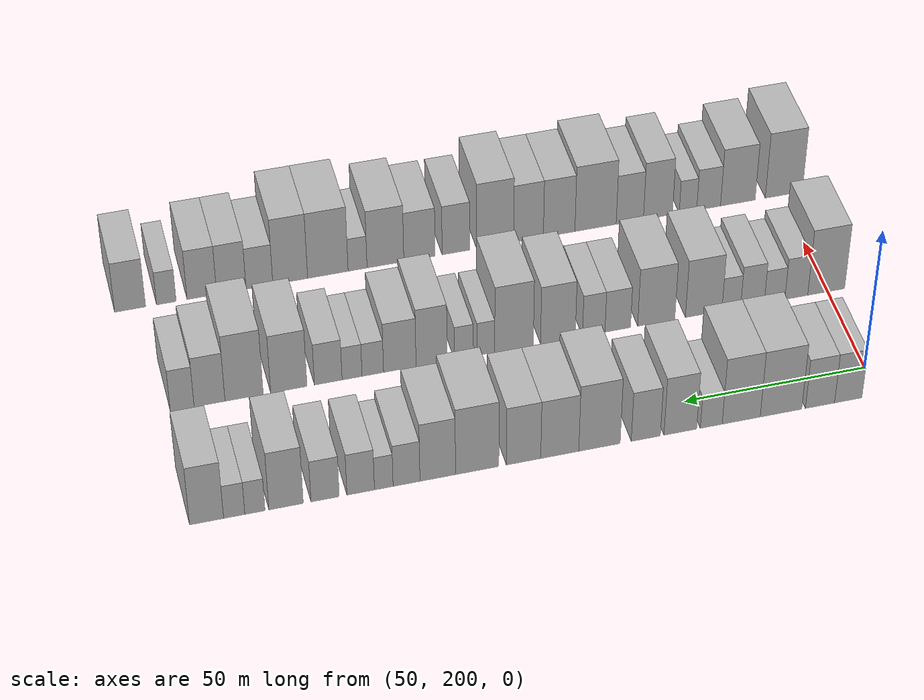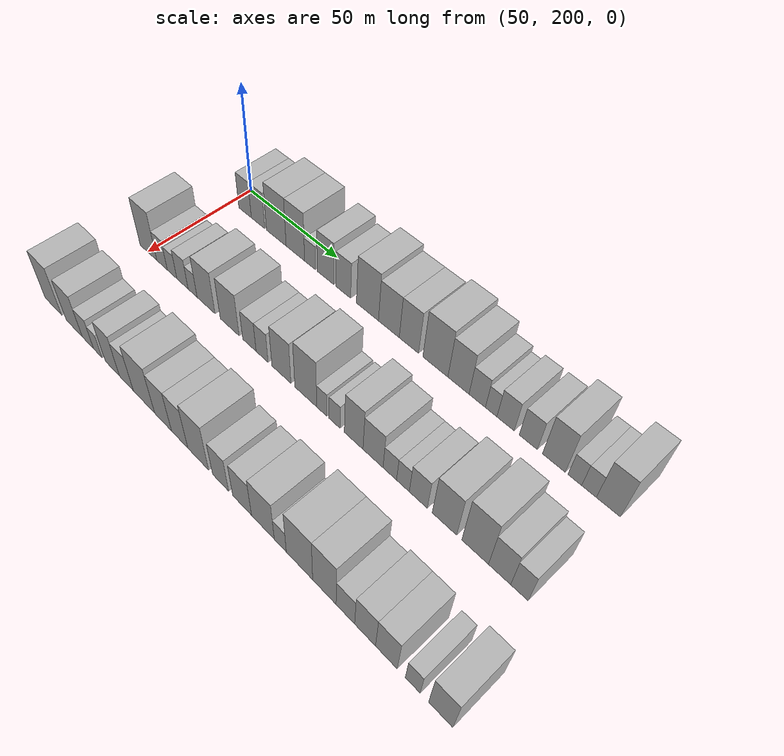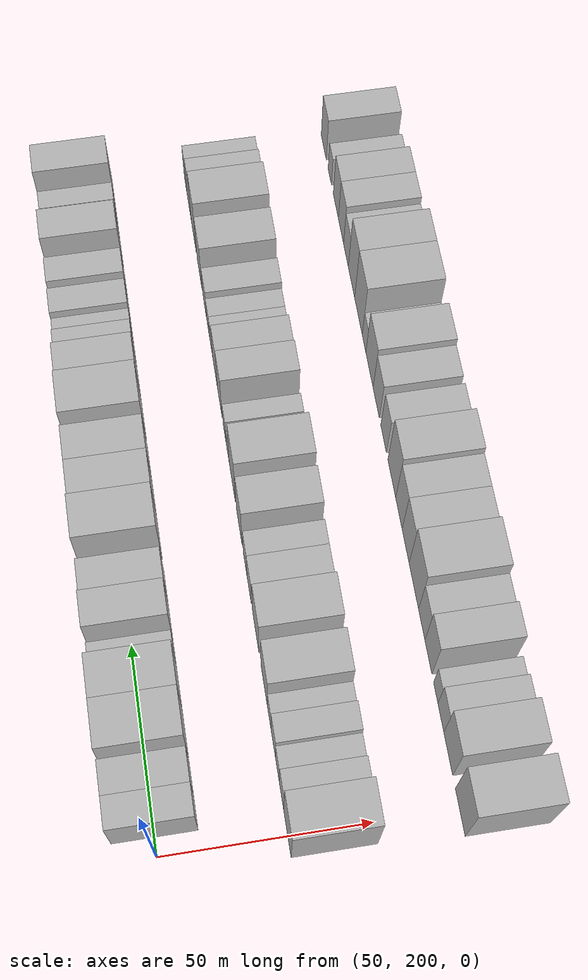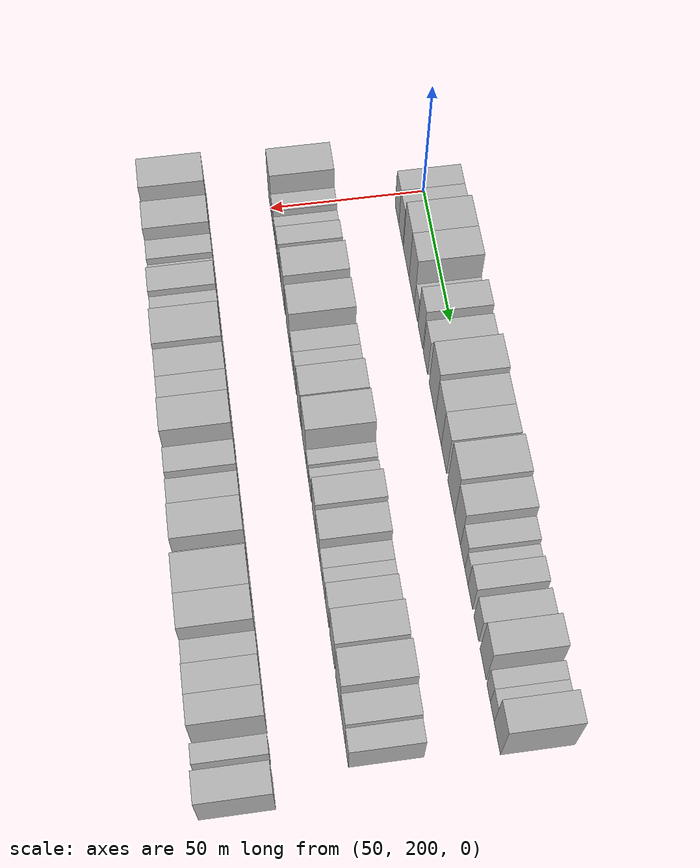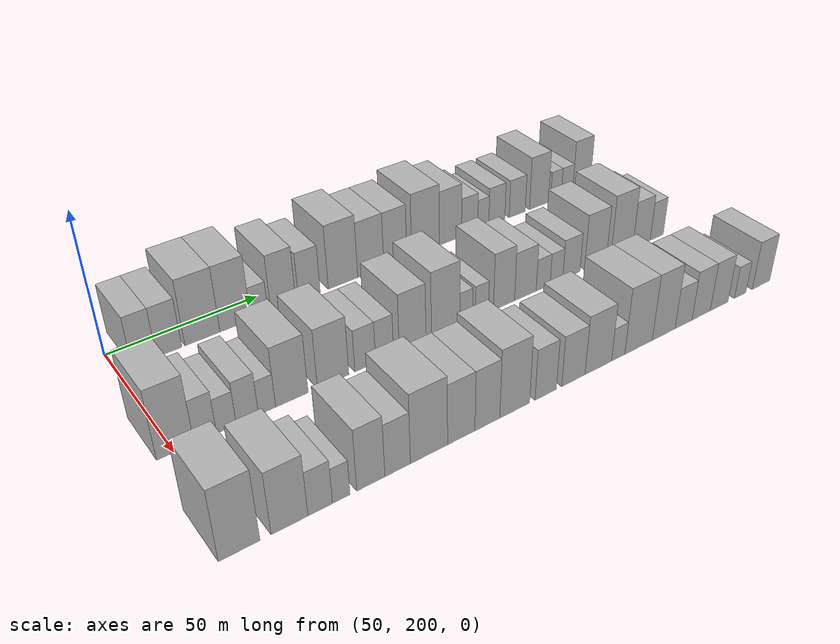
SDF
<sdf version="1.6">
 <world name="default">
  <model name="building_65">
   <static>1</static>
   <pose>50.0000 208.2382 0 0.000000 0.000000 0.000000</pose>
   <link name="link">
    <pose>0 0 9.00 0 0 0</pose>
    <collision name="collision"><geometry><box><size>20.0000 7.5893 18.0000</size></box></geometry></collision>
    <visual name="visual">
     <cast_shadows>0</cast_shadows>
     <geometry><box><size>20.0000 7.5893 18.0000</size></box></geometry>
     <material>
      <script>
       <uri>model://HANNAS_wall/materials/scripts</uri>
       <uri>model://HANNAS_wall/materials/textures</uri>
       <name>vrc/HANNAS_wall</name>
      </script>
     </material>
    </visual>
   </link>
  </model>
  <model name="building_66">
   <static>1</static>
   <pose>50.0000 216.0574 0 0.000000 0.000000 0.000000</pose>
   <link name="link">
    <pose>0 0 9.00 0 0 0</pose>
    <collision name="collision"><geometry><box><size>20.0000 8.0491 18.0000</size></box></geometry></collision>
    <visual name="visual">
     <cast_shadows>0</cast_shadows>
     <geometry><box><size>20.0000 8.0491 18.0000</size></box></geometry>
     <material>
      <script>
       <uri>model://HANNAS_wall/materials/scripts</uri>
       <uri>model://HANNAS_wall/materials/textures</uri>
       <name>vrc/HANNAS_wall</name>
      </script>
     </material>
    </visual>
   </link>
  </model>
  <model name="building_67">
   <static>1</static>
   <pose>50.0000 226.7940 0 0.000000 0.000000 0.000000</pose>
   <link name="link">
    <pose>0 0 12.00 0 0 0</pose>
    <collision name="collision"><geometry><box><size>20.0000 11.4243 24.0000</size></box></geometry></collision>
    <visual name="visual">
     <cast_shadows>0</cast_shadows>
     <geometry><box><size>20.0000 11.4243 24.0000</size></box></geometry>
     <material>
      <script>
       <uri>model://HANNAS_wall/materials/scripts</uri>
       <uri>model://HANNAS_wall/materials/textures</uri>
       <name>vrc/HANNAS_wall</name>
      </script>
     </material>
    </visual>
   </link>
  </model>
  <model name="building_68">
   <static>1</static>
   <pose>50.0000 237.7048 0 0.000000 0.000000 0.000000</pose>
   <link name="link">
    <pose>0 0 12.00 0 0 0</pose>
    <collision name="collision"><geometry><box><size>20.0000 10.3973 24.0000</size></box></geometry></collision>
    <visual name="visual">
     <cast_shadows>0</cast_shadows>
     <geometry><box><size>20.0000 10.3973 24.0000</size></box></geometry>
     <material>
      <script>
       <uri>model://HANNAS_wall/materials/scripts</uri>
       <uri>model://HANNAS_wall/materials/textures</uri>
       <name>vrc/HANNAS_wall</name>
      </script>
     </material>
    </visual>
   </link>
  </model>
  <model name="building_69">
   <static>1</static>
   <pose>50.0000 245.8896 0 0.000000 0.000000 0.000000</pose>
   <link name="link">
    <pose>0 0 6.00 0 0 0</pose>
    <collision name="collision"><geometry><box><size>20.0000 5.9723 12.0000</size></box></geometry></collision>
    <visual name="visual">
     <cast_shadows>0</cast_shadows>
     <geometry><box><size>20.0000 5.9723 12.0000</size></box></geometry>
     <material>
      <script>
       <uri>model://HANNAS_wall/materials/scripts</uri>
       <uri>model://HANNAS_wall/materials/textures</uri>
       <name>vrc/HANNAS_wall</name>
      </script>
     </material>
    </visual>
   </link>
  </model>
  <model name="building_70">
   <static>1</static>
   <pose>50.0000 254.3017 0 0.000000 0.000000 0.000000</pose>
   <link name="link">
    <pose>0 0 10.50 0 0 0</pose>
    <collision name="collision"><geometry><box><size>20.0000 8.8517 21.0000</size></box></geometry></collision>
    <visual name="visual">
     <cast_shadows>0</cast_shadows>
     <geometry><box><size>20.0000 8.8517 21.0000</size></box></geometry>
     <material>
      <script>
       <uri>model://HANNAS_wall/materials/scripts</uri>
       <uri>model://HANNAS_wall/materials/textures</uri>
       <name>vrc/HANNAS_wall</name>
      </script>
     </material>
    </visual>
   </link>
  </model>
  <model name="building_71">
   <static>1</static>
   <pose>50.0000 263.6543 0 0.000000 0.000000 0.000000</pose>
   <link name="link">
    <pose>0 0 9.00 0 0 0</pose>
    <collision name="collision"><geometry><box><size>20.0000 7.8535 18.0000</size></box></geometry></collision>
    <visual name="visual">
     <cast_shadows>0</cast_shadows>
     <geometry><box><size>20.0000 7.8535 18.0000</size></box></geometry>
     <material>
      <script>
       <uri>model://HANNAS_wall/materials/scripts</uri>
       <uri>model://HANNAS_wall/materials/textures</uri>
       <name>vrc/HANNAS_wall</name>
      </script>
     </material>
    </visual>
   </link>
  </model>
  <model name="building_72">
   <static>1</static>
   <pose>50.0000 276.1344 0 0.000000 0.000000 0.000000</pose>
   <link name="link">
    <pose>0 0 12.00 0 0 0</pose>
    <collision name="collision"><geometry><box><size>20.0000 11.1066 24.0000</size></box></geometry></collision>
    <visual name="visual">
     <cast_shadows>0</cast_shadows>
     <geometry><box><size>20.0000 11.1066 24.0000</size></box></geometry>
     <material>
      <script>
       <uri>model://HANNAS_wall/materials/scripts</uri>
       <uri>model://HANNAS_wall/materials/textures</uri>
       <name>vrc/HANNAS_wall</name>
      </script>
     </material>
    </visual>
   </link>
  </model>
  <model name="building_73">
   <static>1</static>
   <pose>50.0000 286.7771 0 0.000000 0.000000 0.000000</pose>
   <link name="link">
    <pose>0 0 10.50 0 0 0</pose>
    <collision name="collision"><geometry><box><size>20.0000 10.1788 21.0000</size></box></geometry></collision>
    <visual name="visual">
     <cast_shadows>0</cast_shadows>
     <geometry><box><size>20.0000 10.1788 21.0000</size></box></geometry>
     <material>
      <script>
       <uri>model://HANNAS_wall/materials/scripts</uri>
       <uri>model://HANNAS_wall/materials/textures</uri>
       <name>vrc/HANNAS_wall</name>
      </script>
     </material>
    </visual>
   </link>
  </model>
  <model name="building_74">
   <static>1</static>
   <pose>50.0000 296.4450 0 0.000000 0.000000 0.000000</pose>
   <link name="link">
    <pose>0 0 10.50 0 0 0</pose>
    <collision name="collision"><geometry><box><size>20.0000 9.1570 21.0000</size></box></geometry></collision>
    <visual name="visual">
     <cast_shadows>0</cast_shadows>
     <geometry><box><size>20.0000 9.1570 21.0000</size></box></geometry>
     <material>
      <script>
       <uri>model://HANNAS_wall/materials/scripts</uri>
       <uri>model://HANNAS_wall/materials/textures</uri>
       <name>vrc/HANNAS_wall</name>
      </script>
     </material>
    </visual>
   </link>
  </model>
  <model name="building_75">
   <static>1</static>
   <pose>50.0000 308.7488 0 0.000000 0.000000 0.000000</pose>
   <link name="link">
    <pose>0 0 12.00 0 0 0</pose>
    <collision name="collision"><geometry><box><size>20.0000 11.4506 24.0000</size></box></geometry></collision>
    <visual name="visual">
     <cast_shadows>0</cast_shadows>
     <geometry><box><size>20.0000 11.4506 24.0000</size></box></geometry>
     <material>
      <script>
       <uri>model://HANNAS_wall/materials/scripts</uri>
       <uri>model://HANNAS_wall/materials/textures</uri>
       <name>vrc/HANNAS_wall</name>
      </script>
     </material>
    </visual>
   </link>
  </model>
  <model name="building_76">
   <static>1</static>
   <pose>50.0000 319.1549 0 0.000000 0.000000 0.000000</pose>
   <link name="link">
    <pose>0 0 10.50 0 0 0</pose>
    <collision name="collision"><geometry><box><size>20.0000 9.3616 21.0000</size></box></geometry></collision>
    <visual name="visual">
     <cast_shadows>0</cast_shadows>
     <geometry><box><size>20.0000 9.3616 21.0000</size></box></geometry>
     <material>
      <script>
       <uri>model://HANNAS_wall/materials/scripts</uri>
       <uri>model://HANNAS_wall/materials/textures</uri>
       <name>vrc/HANNAS_wall</name>
      </script>
     </material>
    </visual>
   </link>
  </model>
  <model name="building_77">
   <static>1</static>
   <pose>50.0000 327.3641 0 0.000000 0.000000 0.000000</pose>
   <link name="link">
    <pose>0 0 7.50 0 0 0</pose>
    <collision name="collision"><geometry><box><size>20.0000 7.0567 15.0000</size></box></geometry></collision>
    <visual name="visual">
     <cast_shadows>0</cast_shadows>
     <geometry><box><size>20.0000 7.0567 15.0000</size></box></geometry>
     <material>
      <script>
       <uri>model://HANNAS_wall/materials/scripts</uri>
       <uri>model://HANNAS_wall/materials/textures</uri>
       <name>vrc/HANNAS_wall</name>
      </script>
     </material>
    </visual>
   </link>
  </model>
  <model name="building_78">
   <static>1</static>
   <pose>50.0000 333.3242 0 0.000000 0.000000 0.000000</pose>
   <link name="link">
    <pose>0 0 6.00 0 0 0</pose>
    <collision name="collision"><geometry><box><size>20.0000 4.8637 12.0000</size></box></geometry></collision>
    <visual name="visual">
     <cast_shadows>0</cast_shadows>
     <geometry><box><size>20.0000 4.8637 12.0000</size></box></geometry>
     <material>
      <script>
       <uri>model://HANNAS_wall/materials/scripts</uri>
       <uri>model://HANNAS_wall/materials/textures</uri>
       <name>vrc/HANNAS_wall</name>
      </script>
     </material>
    </visual>
   </link>
  </model>
  <model name="building_79">
   <static>1</static>
   <pose>50.0000 339.3490 0 0.000000 0.000000 0.000000</pose>
   <link name="link">
    <pose>0 0 7.50 0 0 0</pose>
    <collision name="collision"><geometry><box><size>20.0000 7.1859 15.0000</size></box></geometry></collision>
    <visual name="visual">
     <cast_shadows>0</cast_shadows>
     <geometry><box><size>20.0000 7.1859 15.0000</size></box></geometry>
     <material>
      <script>
       <uri>model://HANNAS_wall/materials/scripts</uri>
       <uri>model://HANNAS_wall/materials/textures</uri>
       <name>vrc/HANNAS_wall</name>
      </script>
     </material>
    </visual>
   </link>
  </model>
  <model name="building_80">
   <static>1</static>
   <pose>50.0000 348.6102 0 0.000000 0.000000 0.000000</pose>
   <link name="link">
    <pose>0 0 7.50 0 0 0</pose>
    <collision name="collision"><geometry><box><size>20.0000 7.3364 15.0000</size></box></geometry></collision>
    <visual name="visual">
     <cast_shadows>0</cast_shadows>
     <geometry><box><size>20.0000 7.3364 15.0000</size></box></geometry>
     <material>
      <script>
       <uri>model://HANNAS_wall/materials/scripts</uri>
       <uri>model://HANNAS_wall/materials/textures</uri>
       <name>vrc/HANNAS_wall</name>
      </script>
     </material>
    </visual>
   </link>
  </model>
  <model name="building_81">
   <static>1</static>
   <pose>50.0000 358.7239 0 0.000000 0.000000 0.000000</pose>
   <link name="link">
    <pose>0 0 10.50 0 0 0</pose>
    <collision name="collision"><geometry><box><size>20.0000 8.8910 21.0000</size></box></geometry></collision>
    <visual name="visual">
     <cast_shadows>0</cast_shadows>
     <geometry><box><size>20.0000 8.8910 21.0000</size></box></geometry>
     <material>
      <script>
       <uri>model://HANNAS_wall/materials/scripts</uri>
       <uri>model://HANNAS_wall/materials/textures</uri>
       <name>vrc/HANNAS_wall</name>
      </script>
     </material>
    </visual>
   </link>
  </model>
  <model name="building_82">
   <static>1</static>
   <pose>50.0000 366.7610 0 0.000000 0.000000 0.000000</pose>
   <link name="link">
    <pose>0 0 6.00 0 0 0</pose>
    <collision name="collision"><geometry><box><size>20.0000 5.1833 12.0000</size></box></geometry></collision>
    <visual name="visual">
     <cast_shadows>0</cast_shadows>
     <geometry><box><size>20.0000 5.1833 12.0000</size></box></geometry>
     <material>
      <script>
       <uri>model://HANNAS_wall/materials/scripts</uri>
       <uri>model://HANNAS_wall/materials/textures</uri>
       <name>vrc/HANNAS_wall</name>
      </script>
     </material>
    </visual>
   </link>
  </model>
  <model name="building_83">
   <static>1</static>
   <pose>50.0000 372.0821 0 0.000000 0.000000 0.000000</pose>
   <link name="link">
    <pose>0 0 6.00 0 0 0</pose>
    <collision name="collision"><geometry><box><size>20.0000 5.4588 12.0000</size></box></geometry></collision>
    <visual name="visual">
     <cast_shadows>0</cast_shadows>
     <geometry><box><size>20.0000 5.4588 12.0000</size></box></geometry>
     <material>
      <script>
       <uri>model://HANNAS_wall/materials/scripts</uri>
       <uri>model://HANNAS_wall/materials/textures</uri>
       <name>vrc/HANNAS_wall</name>
      </script>
     </material>
    </visual>
   </link>
  </model>
  <model name="building_84">
   <static>1</static>
   <pose>50.0000 379.1768 0 0.000000 0.000000 0.000000</pose>
   <link name="link">
    <pose>0 0 10.50 0 0 0</pose>
    <collision name="collision"><geometry><box><size>20.0000 8.7306 21.0000</size></box></geometry></collision>
    <visual name="visual">
     <cast_shadows>0</cast_shadows>
     <geometry><box><size>20.0000 8.7306 21.0000</size></box></geometry>
     <material>
      <script>
       <uri>model://HANNAS_wall/materials/scripts</uri>
       <uri>model://HANNAS_wall/materials/textures</uri>
       <name>vrc/HANNAS_wall</name>
      </script>
     </material>
    </visual>
   </link>
  </model>
  <model name="building_151">
   <static>1</static>
   <pose>90.0000 200.4691 0 0.000000 0.000000 0.000000</pose>
   <link name="link">
    <pose>0 0 12.00 0 0 0</pose>
    <collision name="collision"><geometry><box><size>20.0000 10.6009 24.0000</size></box></geometry></collision>
    <visual name="visual">
     <cast_shadows>0</cast_shadows>
     <geometry><box><size>20.0000 10.6009 24.0000</size></box></geometry>
     <material>
      <script>
       <uri>model://HANNAS_wall/materials/scripts</uri>
       <uri>model://HANNAS_wall/materials/textures</uri>
       <name>vrc/HANNAS_wall</name>
      </script>
     </material>
    </visual>
   </link>
  </model>
  <model name="building_152">
   <static>1</static>
   <pose>90.0000 209.0372 0 0.000000 0.000000 0.000000</pose>
   <link name="link">
    <pose>0 0 7.50 0 0 0</pose>
    <collision name="collision"><geometry><box><size>20.0000 6.5353 15.0000</size></box></geometry></collision>
    <visual name="visual">
     <cast_shadows>0</cast_shadows>
     <geometry><box><size>20.0000 6.5353 15.0000</size></box></geometry>
     <material>
      <script>
       <uri>model://HANNAS_wall/materials/scripts</uri>
       <uri>model://HANNAS_wall/materials/textures</uri>
       <name>vrc/HANNAS_wall</name>
      </script>
     </material>
    </visual>
   </link>
  </model>
  <model name="building_153">
   <static>1</static>
   <pose>90.0000 215.2442 0 0.000000 0.000000 0.000000</pose>
   <link name="link">
    <pose>0 0 6.00 0 0 0</pose>
    <collision name="collision"><geometry><box><size>20.0000 5.8786 12.0000</size></box></geometry></collision>
    <visual name="visual">
     <cast_shadows>0</cast_shadows>
     <geometry><box><size>20.0000 5.8786 12.0000</size></box></geometry>
     <material>
      <script>
       <uri>model://HANNAS_wall/materials/scripts</uri>
       <uri>model://HANNAS_wall/materials/textures</uri>
       <name>vrc/HANNAS_wall</name>
      </script>
     </material>
    </visual>
   </link>
  </model>
  <model name="building_154">
   <static>1</static>
   <pose>90.0000 221.5537 0 0.000000 0.000000 0.000000</pose>
   <link name="link">
    <pose>0 0 7.50 0 0 0</pose>
    <collision name="collision"><geometry><box><size>20.0000 6.7405 15.0000</size></box></geometry></collision>
    <visual name="visual">
     <cast_shadows>0</cast_shadows>
     <geometry><box><size>20.0000 6.7405 15.0000</size></box></geometry>
     <material>
      <script>
       <uri>model://HANNAS_wall/materials/scripts</uri>
       <uri>model://HANNAS_wall/materials/textures</uri>
       <name>vrc/HANNAS_wall</name>
      </script>
     </material>
    </visual>
   </link>
  </model>
  <model name="building_155">
   <static>1</static>
   <pose>90.0000 227.5792 0 0.000000 0.000000 0.000000</pose>
   <link name="link">
    <pose>0 0 6.00 0 0 0</pose>
    <collision name="collision"><geometry><box><size>20.0000 5.3105 12.0000</size></box></geometry></collision>
    <visual name="visual">
     <cast_shadows>0</cast_shadows>
     <geometry><box><size>20.0000 5.3105 12.0000</size></box></geometry>
     <material>
      <script>
       <uri>model://HANNAS_wall/materials/scripts</uri>
       <uri>model://HANNAS_wall/materials/textures</uri>
       <name>vrc/HANNAS_wall</name>
      </script>
     </material>
    </visual>
   </link>
  </model>
  <model name="building_156">
   <static>1</static>
   <pose>90.0000 235.3948 0 0.000000 0.000000 0.000000</pose>
   <link name="link">
    <pose>0 0 10.50 0 0 0</pose>
    <collision name="collision"><geometry><box><size>20.0000 10.3207 21.0000</size></box></geometry></collision>
    <visual name="visual">
     <cast_shadows>0</cast_shadows>
     <geometry><box><size>20.0000 10.3207 21.0000</size></box></geometry>
     <material>
      <script>
       <uri>model://HANNAS_wall/materials/scripts</uri>
       <uri>model://HANNAS_wall/materials/textures</uri>
       <name>vrc/HANNAS_wall</name>
      </script>
     </material>
    </visual>
   </link>
  </model>
  <model name="building_157">
   <static>1</static>
   <pose>90.0000 248.7742 0 0.000000 0.000000 0.000000</pose>
   <link name="link">
    <pose>0 0 10.50 0 0 0</pose>
    <collision name="collision"><geometry><box><size>20.0000 10.4381 21.0000</size></box></geometry></collision>
    <visual name="visual">
     <cast_shadows>0</cast_shadows>
     <geometry><box><size>20.0000 10.4381 21.0000</size></box></geometry>
     <material>
      <script>
       <uri>model://HANNAS_wall/materials/scripts</uri>
       <uri>model://HANNAS_wall/materials/textures</uri>
       <name>vrc/HANNAS_wall</name>
      </script>
     </material>
    </visual>
   </link>
  </model>
  <model name="building_158">
   <static>1</static>
   <pose>90.0000 259.5689 0 0.000000 0.000000 0.000000</pose>
   <link name="link">
    <pose>0 0 7.50 0 0 0</pose>
    <collision name="collision"><geometry><box><size>20.0000 7.1513 15.0000</size></box></geometry></collision>
    <visual name="visual">
     <cast_shadows>0</cast_shadows>
     <geometry><box><size>20.0000 7.1513 15.0000</size></box></geometry>
     <material>
      <script>
       <uri>model://HANNAS_wall/materials/scripts</uri>
       <uri>model://HANNAS_wall/materials/textures</uri>
       <name>vrc/HANNAS_wall</name>
      </script>
     </material>
    </visual>
   </link>
  </model>
  <model name="building_159">
   <static>1</static>
   <pose>90.0000 266.2910 0 0.000000 0.000000 0.000000</pose>
   <link name="link">
    <pose>0 0 7.50 0 0 0</pose>
    <collision name="collision"><geometry><box><size>20.0000 6.2930 15.0000</size></box></geometry></collision>
    <visual name="visual">
     <cast_shadows>0</cast_shadows>
     <geometry><box><size>20.0000 6.2930 15.0000</size></box></geometry>
     <material>
      <script>
       <uri>model://HANNAS_wall/materials/scripts</uri>
       <uri>model://HANNAS_wall/materials/textures</uri>
       <name>vrc/HANNAS_wall</name>
      </script>
     </material>
    </visual>
   </link>
  </model>
  <model name="building_160">
   <static>1</static>
   <pose>90.0000 276.2692 0 0.000000 0.000000 0.000000</pose>
   <link name="link">
    <pose>0 0 10.50 0 0 0</pose>
    <collision name="collision"><geometry><box><size>20.0000 9.6634 21.0000</size></box></geometry></collision>
    <visual name="visual">
     <cast_shadows>0</cast_shadows>
     <geometry><box><size>20.0000 9.6634 21.0000</size></box></geometry>
     <material>
      <script>
       <uri>model://HANNAS_wall/materials/scripts</uri>
       <uri>model://HANNAS_wall/materials/textures</uri>
       <name>vrc/HANNAS_wall</name>
      </script>
     </material>
    </visual>
   </link>
  </model>
  <model name="building_161">
   <static>1</static>
   <pose>90.0000 288.4365 0 0.000000 0.000000 0.000000</pose>
   <link name="link">
    <pose>0 0 12.00 0 0 0</pose>
    <collision name="collision"><geometry><box><size>20.0000 10.6712 24.0000</size></box></geometry></collision>
    <visual name="visual">
     <cast_shadows>0</cast_shadows>
     <geometry><box><size>20.0000 10.6712 24.0000</size></box></geometry>
     <material>
      <script>
       <uri>model://HANNAS_wall/materials/scripts</uri>
       <uri>model://HANNAS_wall/materials/textures</uri>
       <name>vrc/HANNAS_wall</name>
      </script>
     </material>
    </visual>
   </link>
  </model>
  <model name="building_162">
   <static>1</static>
   <pose>90.0000 296.2308 0 0.000000 0.000000 0.000000</pose>
   <link name="link">
    <pose>0 0 6.00 0 0 0</pose>
    <collision name="collision"><geometry><box><size>20.0000 4.9175 12.0000</size></box></geometry></collision>
    <visual name="visual">
     <cast_shadows>0</cast_shadows>
     <geometry><box><size>20.0000 4.9175 12.0000</size></box></geometry>
     <material>
      <script>
       <uri>model://HANNAS_wall/materials/scripts</uri>
       <uri>model://HANNAS_wall/materials/textures</uri>
       <name>vrc/HANNAS_wall</name>
      </script>
     </material>
    </visual>
   </link>
  </model>
  <model name="building_163">
   <static>1</static>
   <pose>90.0000 302.2644 0 0.000000 0.000000 0.000000</pose>
   <link name="link">
    <pose>0 0 6.00 0 0 0</pose>
    <collision name="collision"><geometry><box><size>20.0000 5.1497 12.0000</size></box></geometry></collision>
    <visual name="visual">
     <cast_shadows>0</cast_shadows>
     <geometry><box><size>20.0000 5.1497 12.0000</size></box></geometry>
     <material>
      <script>
       <uri>model://HANNAS_wall/materials/scripts</uri>
       <uri>model://HANNAS_wall/materials/textures</uri>
       <name>vrc/HANNAS_wall</name>
      </script>
     </material>
    </visual>
   </link>
  </model>
  <model name="building_164">
   <static>1</static>
   <pose>90.0000 311.0741 0 0.000000 0.000000 0.000000</pose>
   <link name="link">
    <pose>0 0 10.50 0 0 0</pose>
    <collision name="collision"><geometry><box><size>20.0000 8.4698 21.0000</size></box></geometry></collision>
    <visual name="visual">
     <cast_shadows>0</cast_shadows>
     <geometry><box><size>20.0000 8.4698 21.0000</size></box></geometry>
     <material>
      <script>
       <uri>model://HANNAS_wall/materials/scripts</uri>
       <uri>model://HANNAS_wall/materials/textures</uri>
       <name>vrc/HANNAS_wall</name>
      </script>
     </material>
    </visual>
   </link>
  </model>
  <model name="building_165">
   <static>1</static>
   <pose>90.0000 319.7400 0 0.000000 0.000000 0.000000</pose>
   <link name="link">
    <pose>0 0 9.00 0 0 0</pose>
    <collision name="collision"><geometry><box><size>20.0000 8.8618 18.0000</size></box></geometry></collision>
    <visual name="visual">
     <cast_shadows>0</cast_shadows>
     <geometry><box><size>20.0000 8.8618 18.0000</size></box></geometry>
     <material>
      <script>
       <uri>model://HANNAS_wall/materials/scripts</uri>
       <uri>model://HANNAS_wall/materials/textures</uri>
       <name>vrc/HANNAS_wall</name>
      </script>
     </material>
    </visual>
   </link>
  </model>
  <model name="building_166">
   <static>1</static>
   <pose>90.0000 327.0971 0 0.000000 0.000000 0.000000</pose>
   <link name="link">
    <pose>0 0 6.00 0 0 0</pose>
    <collision name="collision"><geometry><box><size>20.0000 5.8524 12.0000</size></box></geometry></collision>
    <visual name="visual">
     <cast_shadows>0</cast_shadows>
     <geometry><box><size>20.0000 5.8524 12.0000</size></box></geometry>
     <material>
      <script>
       <uri>model://HANNAS_wall/materials/scripts</uri>
       <uri>model://HANNAS_wall/materials/textures</uri>
       <name>vrc/HANNAS_wall</name>
      </script>
     </material>
    </visual>
   </link>
  </model>
  <model name="building_167">
   <static>1</static>
   <pose>90.0000 332.7171 0 0.000000 0.000000 0.000000</pose>
   <link name="link">
    <pose>0 0 6.00 0 0 0</pose>
    <collision name="collision"><geometry><box><size>20.0000 5.3876 12.0000</size></box></geometry></collision>
    <visual name="visual">
     <cast_shadows>0</cast_shadows>
     <geometry><box><size>20.0000 5.3876 12.0000</size></box></geometry>
     <material>
      <script>
       <uri>model://HANNAS_wall/materials/scripts</uri>
       <uri>model://HANNAS_wall/materials/textures</uri>
       <name>vrc/HANNAS_wall</name>
      </script>
     </material>
    </visual>
   </link>
  </model>
  <model name="building_168">
   <static>1</static>
   <pose>90.0000 339.1470 0 0.000000 0.000000 0.000000</pose>
   <link name="link">
    <pose>0 0 7.50 0 0 0</pose>
    <collision name="collision"><geometry><box><size>20.0000 7.4723 15.0000</size></box></geometry></collision>
    <visual name="visual">
     <cast_shadows>0</cast_shadows>
     <geometry><box><size>20.0000 7.4723 15.0000</size></box></geometry>
     <material>
      <script>
       <uri>model://HANNAS_wall/materials/scripts</uri>
       <uri>model://HANNAS_wall/materials/textures</uri>
       <name>vrc/HANNAS_wall</name>
      </script>
     </material>
    </visual>
   </link>
  </model>
  <model name="building_169">
   <static>1</static>
   <pose>90.0000 349.7681 0 0.000000 0.000000 0.000000</pose>
   <link name="link">
    <pose>0 0 10.50 0 0 0</pose>
    <collision name="collision"><geometry><box><size>20.0000 9.7698 21.0000</size></box></geometry></collision>
    <visual name="visual">
     <cast_shadows>0</cast_shadows>
     <geometry><box><size>20.0000 9.7698 21.0000</size></box></geometry>
     <material>
      <script>
       <uri>model://HANNAS_wall/materials/scripts</uri>
       <uri>model://HANNAS_wall/materials/textures</uri>
       <name>vrc/HANNAS_wall</name>
      </script>
     </material>
    </visual>
   </link>
  </model>
  <model name="building_170">
   <static>1</static>
   <pose>90.0000 361.7525 0 0.000000 0.000000 0.000000</pose>
   <link name="link">
    <pose>0 0 12.00 0 0 0</pose>
    <collision name="collision"><geometry><box><size>20.0000 10.1992 24.0000</size></box></geometry></collision>
    <visual name="visual">
     <cast_shadows>0</cast_shadows>
     <geometry><box><size>20.0000 10.1992 24.0000</size></box></geometry>
     <material>
      <script>
       <uri>model://HANNAS_wall/materials/scripts</uri>
       <uri>model://HANNAS_wall/materials/textures</uri>
       <name>vrc/HANNAS_wall</name>
      </script>
     </material>
    </visual>
   </link>
  </model>
  <model name="building_171">
   <static>1</static>
   <pose>90.0000 370.9620 0 0.000000 0.000000 0.000000</pose>
   <link name="link">
    <pose>0 0 9.00 0 0 0</pose>
    <collision name="collision"><geometry><box><size>20.0000 8.2198 18.0000</size></box></geometry></collision>
    <visual name="visual">
     <cast_shadows>0</cast_shadows>
     <geometry><box><size>20.0000 8.2198 18.0000</size></box></geometry>
     <material>
      <script>
       <uri>model://HANNAS_wall/materials/scripts</uri>
       <uri>model://HANNAS_wall/materials/textures</uri>
       <name>vrc/HANNAS_wall</name>
      </script>
     </material>
    </visual>
   </link>
  </model>
  <model name="building_172">
   <static>1</static>
   <pose>90.0000 378.2370 0 0.000000 0.000000 0.000000</pose>
   <link name="link">
    <pose>0 0 7.50 0 0 0</pose>
    <collision name="collision"><geometry><box><size>20.0000 6.3302 15.0000</size></box></geometry></collision>
    <visual name="visual">
     <cast_shadows>0</cast_shadows>
     <geometry><box><size>20.0000 6.3302 15.0000</size></box></geometry>
     <material>
      <script>
       <uri>model://HANNAS_wall/materials/scripts</uri>
       <uri>model://HANNAS_wall/materials/textures</uri>
       <name>vrc/HANNAS_wall</name>
      </script>
     </material>
    </visual>
   </link>
  </model>
  <model name="building_233">
   <static>1</static>
   <pose>130.0000 199.1903 0 0.000000 0.000000 0.000000</pose>
   <link name="link">
    <pose>0 0 12.00 0 0 0</pose>
    <collision name="collision"><geometry><box><size>20.0000 10.9692 24.0000</size></box></geometry></collision>
    <visual name="visual">
     <cast_shadows>0</cast_shadows>
     <geometry><box><size>20.0000 10.9692 24.0000</size></box></geometry>
     <material>
      <script>
       <uri>model://HANNAS_wall/materials/scripts</uri>
       <uri>model://HANNAS_wall/materials/textures</uri>
       <name>vrc/HANNAS_wall</name>
      </script>
     </material>
    </visual>
   </link>
  </model>
  <model name="building_234">
   <static>1</static>
   <pose>130.0000 212.7773 0 0.000000 0.000000 0.000000</pose>
   <link name="link">
    <pose>0 0 10.50 0 0 0</pose>
    <collision name="collision"><geometry><box><size>20.0000 10.2048 21.0000</size></box></geometry></collision>
    <visual name="visual">
     <cast_shadows>0</cast_shadows>
     <geometry><box><size>20.0000 10.2048 21.0000</size></box></geometry>
     <material>
      <script>
       <uri>model://HANNAS_wall/materials/scripts</uri>
       <uri>model://HANNAS_wall/materials/textures</uri>
       <name>vrc/HANNAS_wall</name>
      </script>
     </material>
    </visual>
   </link>
  </model>
  <model name="building_235">
   <static>1</static>
   <pose>130.0000 221.3793 0 0.000000 0.000000 0.000000</pose>
   <link name="link">
    <pose>0 0 7.50 0 0 0</pose>
    <collision name="collision"><geometry><box><size>20.0000 6.9991 15.0000</size></box></geometry></collision>
    <visual name="visual">
     <cast_shadows>0</cast_shadows>
     <geometry><box><size>20.0000 6.9991 15.0000</size></box></geometry>
     <material>
      <script>
       <uri>model://HANNAS_wall/materials/scripts</uri>
       <uri>model://HANNAS_wall/materials/textures</uri>
       <name>vrc/HANNAS_wall</name>
      </script>
     </material>
    </visual>
   </link>
  </model>
  <model name="building_236">
   <static>1</static>
   <pose>130.0000 227.4408 0 0.000000 0.000000 0.000000</pose>
   <link name="link">
    <pose>0 0 6.00 0 0 0</pose>
    <collision name="collision"><geometry><box><size>20.0000 5.1238 12.0000</size></box></geometry></collision>
    <visual name="visual">
     <cast_shadows>0</cast_shadows>
     <geometry><box><size>20.0000 5.1238 12.0000</size></box></geometry>
     <material>
      <script>
       <uri>model://HANNAS_wall/materials/scripts</uri>
       <uri>model://HANNAS_wall/materials/textures</uri>
       <name>vrc/HANNAS_wall</name>
      </script>
     </material>
    </visual>
   </link>
  </model>
  <model name="building_237">
   <static>1</static>
   <pose>130.0000 236.2343 0 0.000000 0.000000 0.000000</pose>
   <link name="link">
    <pose>0 0 10.50 0 0 0</pose>
    <collision name="collision"><geometry><box><size>20.0000 8.4631 21.0000</size></box></geometry></collision>
    <visual name="visual">
     <cast_shadows>0</cast_shadows>
     <geometry><box><size>20.0000 8.4631 21.0000</size></box></geometry>
     <material>
      <script>
       <uri>model://HANNAS_wall/materials/scripts</uri>
       <uri>model://HANNAS_wall/materials/textures</uri>
       <name>vrc/HANNAS_wall</name>
      </script>
     </material>
    </visual>
   </link>
  </model>
  <model name="building_238">
   <static>1</static>
   <pose>130.0000 244.4318 0 0.000000 0.000000 0.000000</pose>
   <link name="link">
    <pose>0 0 9.00 0 0 0</pose>
    <collision name="collision"><geometry><box><size>20.0000 7.9319 18.0000</size></box></geometry></collision>
    <visual name="visual">
     <cast_shadows>0</cast_shadows>
     <geometry><box><size>20.0000 7.9319 18.0000</size></box></geometry>
     <material>
      <script>
       <uri>model://HANNAS_wall/materials/scripts</uri>
       <uri>model://HANNAS_wall/materials/textures</uri>
       <name>vrc/HANNAS_wall</name>
      </script>
     </material>
    </visual>
   </link>
  </model>
  <model name="building_239">
   <static>1</static>
   <pose>130.0000 254.3707 0 0.000000 0.000000 0.000000</pose>
   <link name="link">
    <pose>0 0 12.00 0 0 0</pose>
    <collision name="collision"><geometry><box><size>20.0000 11.9459 24.0000</size></box></geometry></collision>
    <visual name="visual">
     <cast_shadows>0</cast_shadows>
     <geometry><box><size>20.0000 11.9459 24.0000</size></box></geometry>
     <material>
      <script>
       <uri>model://HANNAS_wall/materials/scripts</uri>
       <uri>model://HANNAS_wall/materials/textures</uri>
       <name>vrc/HANNAS_wall</name>
      </script>
     </material>
    </visual>
   </link>
  </model>
  <model name="building_240">
   <static>1</static>
   <pose>130.0000 264.8888 0 0.000000 0.000000 0.000000</pose>
   <link name="link">
    <pose>0 0 10.50 0 0 0</pose>
    <collision name="collision"><geometry><box><size>20.0000 9.0902 21.0000</size></box></geometry></collision>
    <visual name="visual">
     <cast_shadows>0</cast_shadows>
     <geometry><box><size>20.0000 9.0902 21.0000</size></box></geometry>
     <material>
      <script>
       <uri>model://HANNAS_wall/materials/scripts</uri>
       <uri>model://HANNAS_wall/materials/textures</uri>
       <name>vrc/HANNAS_wall</name>
      </script>
     </material>
    </visual>
   </link>
  </model>
  <model name="building_241">
   <static>1</static>
   <pose>130.0000 273.7134 0 0.000000 0.000000 0.000000</pose>
   <link name="link">
    <pose>0 0 10.50 0 0 0</pose>
    <collision name="collision"><geometry><box><size>20.0000 8.5591 21.0000</size></box></geometry></collision>
    <visual name="visual">
     <cast_shadows>0</cast_shadows>
     <geometry><box><size>20.0000 8.5591 21.0000</size></box></geometry>
     <material>
      <script>
       <uri>model://HANNAS_wall/materials/scripts</uri>
       <uri>model://HANNAS_wall/materials/textures</uri>
       <name>vrc/HANNAS_wall</name>
      </script>
     </material>
    </visual>
   </link>
  </model>
  <model name="building_242">
   <static>1</static>
   <pose>130.0000 283.2735 0 0.000000 0.000000 0.000000</pose>
   <link name="link">
    <pose>0 0 12.00 0 0 0</pose>
    <collision name="collision"><geometry><box><size>20.0000 10.5609 24.0000</size></box></geometry></collision>
    <visual name="visual">
     <cast_shadows>0</cast_shadows>
     <geometry><box><size>20.0000 10.5609 24.0000</size></box></geometry>
     <material>
      <script>
       <uri>model://HANNAS_wall/materials/scripts</uri>
       <uri>model://HANNAS_wall/materials/textures</uri>
       <name>vrc/HANNAS_wall</name>
      </script>
     </material>
    </visual>
   </link>
  </model>
  <model name="building_243">
   <static>1</static>
   <pose>130.0000 294.4668 0 0.000000 0.000000 0.000000</pose>
   <link name="link">
    <pose>0 0 9.00 0 0 0</pose>
    <collision name="collision"><geometry><box><size>20.0000 7.8259 18.0000</size></box></geometry></collision>
    <visual name="visual">
     <cast_shadows>0</cast_shadows>
     <geometry><box><size>20.0000 7.8259 18.0000</size></box></geometry>
     <material>
      <script>
       <uri>model://HANNAS_wall/materials/scripts</uri>
       <uri>model://HANNAS_wall/materials/textures</uri>
       <name>vrc/HANNAS_wall</name>
      </script>
     </material>
    </visual>
   </link>
  </model>
  <model name="building_244">
   <static>1</static>
   <pose>130.0000 304.8070 0 0.000000 0.000000 0.000000</pose>
   <link name="link">
    <pose>0 0 9.00 0 0 0</pose>
    <collision name="collision"><geometry><box><size>20.0000 8.8545 18.0000</size></box></geometry></collision>
    <visual name="visual">
     <cast_shadows>0</cast_shadows>
     <geometry><box><size>20.0000 8.8545 18.0000</size></box></geometry>
     <material>
      <script>
       <uri>model://HANNAS_wall/materials/scripts</uri>
       <uri>model://HANNAS_wall/materials/textures</uri>
       <name>vrc/HANNAS_wall</name>
      </script>
     </material>
    </visual>
   </link>
  </model>
  <model name="building_245">
   <static>1</static>
   <pose>130.0000 314.4294 0 0.000000 0.000000 0.000000</pose>
   <link name="link">
    <pose>0 0 10.50 0 0 0</pose>
    <collision name="collision"><geometry><box><size>20.0000 10.3903 21.0000</size></box></geometry></collision>
    <visual name="visual">
     <cast_shadows>0</cast_shadows>
     <geometry><box><size>20.0000 10.3903 21.0000</size></box></geometry>
     <material>
      <script>
       <uri>model://HANNAS_wall/materials/scripts</uri>
       <uri>model://HANNAS_wall/materials/textures</uri>
       <name>vrc/HANNAS_wall</name>
      </script>
     </material>
    </visual>
   </link>
  </model>
  <model name="building_246">
   <static>1</static>
   <pose>130.0000 322.2886 0 0.000000 0.000000 0.000000</pose>
   <link name="link">
    <pose>0 0 6.00 0 0 0</pose>
    <collision name="collision"><geometry><box><size>20.0000 5.3281 12.0000</size></box></geometry></collision>
    <visual name="visual">
     <cast_shadows>0</cast_shadows>
     <geometry><box><size>20.0000 5.3281 12.0000</size></box></geometry>
     <material>
      <script>
       <uri>model://HANNAS_wall/materials/scripts</uri>
       <uri>model://HANNAS_wall/materials/textures</uri>
       <name>vrc/HANNAS_wall</name>
      </script>
     </material>
    </visual>
   </link>
  </model>
  <model name="building_247">
   <static>1</static>
   <pose>130.0000 330.6201 0 0.000000 0.000000 0.000000</pose>
   <link name="link">
    <pose>0 0 12.00 0 0 0</pose>
    <collision name="collision"><geometry><box><size>20.0000 11.3348 24.0000</size></box></geometry></collision>
    <visual name="visual">
     <cast_shadows>0</cast_shadows>
     <geometry><box><size>20.0000 11.3348 24.0000</size></box></geometry>
     <material>
      <script>
       <uri>model://HANNAS_wall/materials/scripts</uri>
       <uri>model://HANNAS_wall/materials/textures</uri>
       <name>vrc/HANNAS_wall</name>
      </script>
     </material>
    </visual>
   </link>
  </model>
  <model name="building_248">
   <static>1</static>
   <pose>130.0000 341.1439 0 0.000000 0.000000 0.000000</pose>
   <link name="link">
    <pose>0 0 12.00 0 0 0</pose>
    <collision name="collision"><geometry><box><size>20.0000 9.7129 24.0000</size></box></geometry></collision>
    <visual name="visual">
     <cast_shadows>0</cast_shadows>
     <geometry><box><size>20.0000 9.7129 24.0000</size></box></geometry>
     <material>
      <script>
       <uri>model://HANNAS_wall/materials/scripts</uri>
       <uri>model://HANNAS_wall/materials/textures</uri>
       <name>vrc/HANNAS_wall</name>
      </script>
     </material>
    </visual>
   </link>
  </model>
  <model name="building_249">
   <static>1</static>
   <pose>130.0000 349.7154 0 0.000000 0.000000 0.000000</pose>
   <link name="link">
    <pose>0 0 7.50 0 0 0</pose>
    <collision name="collision"><geometry><box><size>20.0000 7.4302 15.0000</size></box></geometry></collision>
    <visual name="visual">
     <cast_shadows>0</cast_shadows>
     <geometry><box><size>20.0000 7.4302 15.0000</size></box></geometry>
     <material>
      <script>
       <uri>model://HANNAS_wall/materials/scripts</uri>
       <uri>model://HANNAS_wall/materials/textures</uri>
       <name>vrc/HANNAS_wall</name>
      </script>
     </material>
    </visual>
   </link>
  </model>
  <model name="building_250">
   <static>1</static>
   <pose>130.0000 357.4978 0 0.000000 0.000000 0.000000</pose>
   <link name="link">
    <pose>0 0 9.00 0 0 0</pose>
    <collision name="collision"><geometry><box><size>20.0000 8.1347 18.0000</size></box></geometry></collision>
    <visual name="visual">
     <cast_shadows>0</cast_shadows>
     <geometry><box><size>20.0000 8.1347 18.0000</size></box></geometry>
     <material>
      <script>
       <uri>model://HANNAS_wall/materials/scripts</uri>
       <uri>model://HANNAS_wall/materials/textures</uri>
       <name>vrc/HANNAS_wall</name>
      </script>
     </material>
    </visual>
   </link>
  </model>
  <model name="building_251">
   <static>1</static>
   <pose>130.0000 365.6544 0 0.000000 0.000000 0.000000</pose>
   <link name="link">
    <pose>0 0 9.00 0 0 0</pose>
    <collision name="collision"><geometry><box><size>20.0000 8.1785 18.0000</size></box></geometry></collision>
    <visual name="visual">
     <cast_shadows>0</cast_shadows>
     <geometry><box><size>20.0000 8.1785 18.0000</size></box></geometry>
     <material>
      <script>
       <uri>model://HANNAS_wall/materials/scripts</uri>
       <uri>model://HANNAS_wall/materials/textures</uri>
       <name>vrc/HANNAS_wall</name>
      </script>
     </material>
    </visual>
   </link>
  </model>
  <model name="building_252">
   <static>1</static>
   <pose>130.0000 375.4429 0 0.000000 0.000000 0.000000</pose>
   <link name="link">
    <pose>0 0 6.00 0 0 0</pose>
    <collision name="collision"><geometry><box><size>20.0000 5.3984 12.0000</size></box></geometry></collision>
    <visual name="visual">
     <cast_shadows>0</cast_shadows>
     <geometry><box><size>20.0000 5.3984 12.0000</size></box></geometry>
     <material>
      <script>
       <uri>model://HANNAS_wall/materials/scripts</uri>
       <uri>model://HANNAS_wall/materials/textures</uri>
       <name>vrc/HANNAS_wall</name>
      </script>
     </material>
    </visual>
   </link>
  </model>
  <model name="building_253">
   <static>1</static>
   <pose>130.0000 385.3710 0 0.000000 0.000000 0.000000</pose>
   <link name="link">
    <pose>0 0 9.00 0 0 0</pose>
    <collision name="collision"><geometry><box><size>20.0000 8.4578 18.0000</size></box></geometry></collision>
    <visual name="visual">
     <cast_shadows>0</cast_shadows>
     <geometry><box><size>20.0000 8.4578 18.0000</size></box></geometry>
     <material>
      <script>
       <uri>model://HANNAS_wall/materials/scripts</uri>
       <uri>model://HANNAS_wall/materials/textures</uri>
       <name>vrc/HANNAS_wall</name>
      </script>
     </material>
    </visual>
   </link>
  </model>
 </world>
</sdf>
